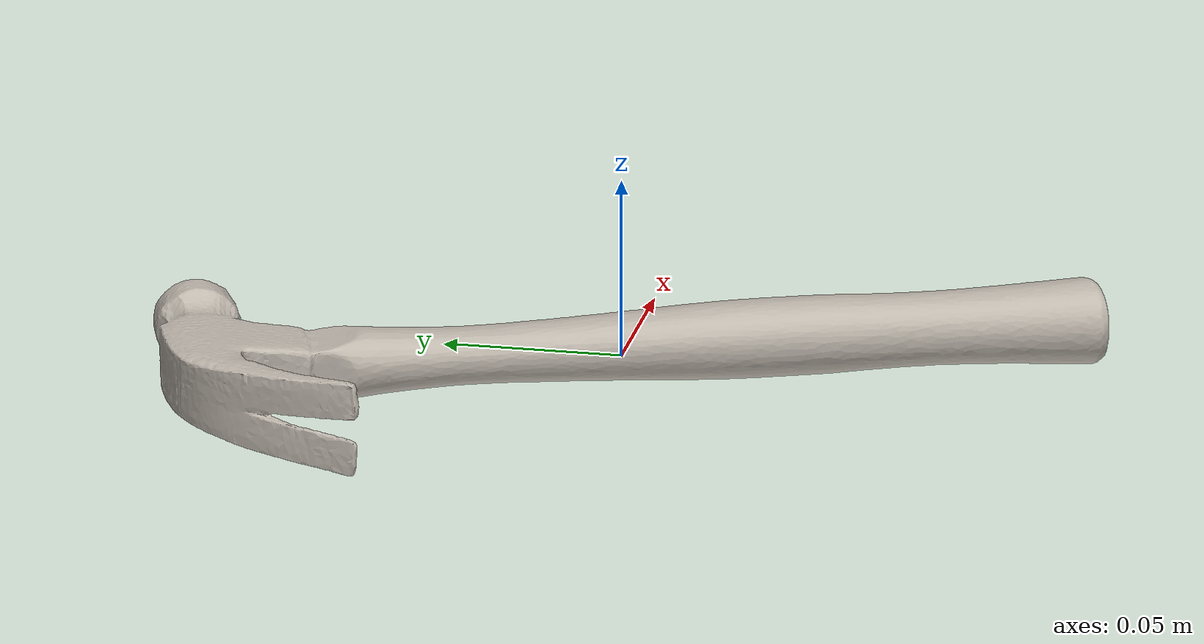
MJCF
<mujoco model="bread">
  <asset>
    <mesh file="nontextured.stl" name="obj_mesh" scale="0.8 0.8 0.8"/>
    <texture file="../../../../../textures/bread.png" type="2d" name="tex-bread" />
    <material name="bread" reflectance="0.7" texrepeat="15 15" texture="tex-bread" texuniform="true"/>
  </asset>
  <worldbody>
    <body>
      <body name="collision">
        <geom pos="0.03772299999999999 0.022710999999999995 -0.015792" mesh="obj_mesh" type="mesh" solimp="0.998 0.998 0.001" solref="0.001 1" density="50" friction="0.95 0.3 0.1"  material="bread" group="1" condim="4"/>
      </body>
      <body name="visual">
        <geom pos="0.03772299999999999 0.022710999999999995 -0.015792" mesh="obj_mesh" type="mesh" material="bread"  conaffinity="0" contype="0"  group="0" mass="0.0001"/>
        <geom pos="0.03772299999999999 0.022710999999999995 -0.015792" mesh="obj_mesh" type="mesh" material="bread"  conaffinity="0" contype="0"  group="1" mass="0.0001"/>
      </body>
      <site rgba="0 0 0 0" size="0.005" pos="0 0 -0.016431" name="bottom_site"/>
      <site rgba="0 0 0 0" size="0.005" pos="0 0 0.016431" name="top_site"/>
      <site rgba="0 0 0 0" size="0.005" pos="0.0911 0.16636099999999998 0.016431" name="horizontal_radius_site"/>
    </body>
  </worldbody>
</mujoco>
